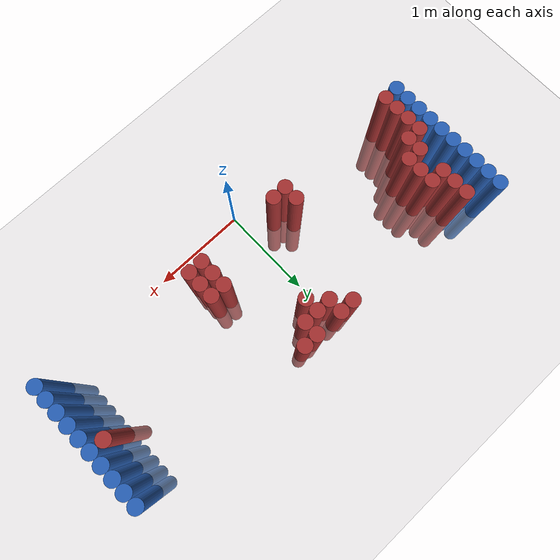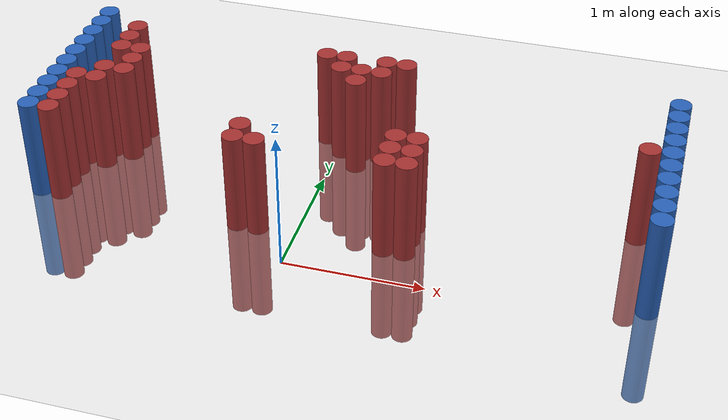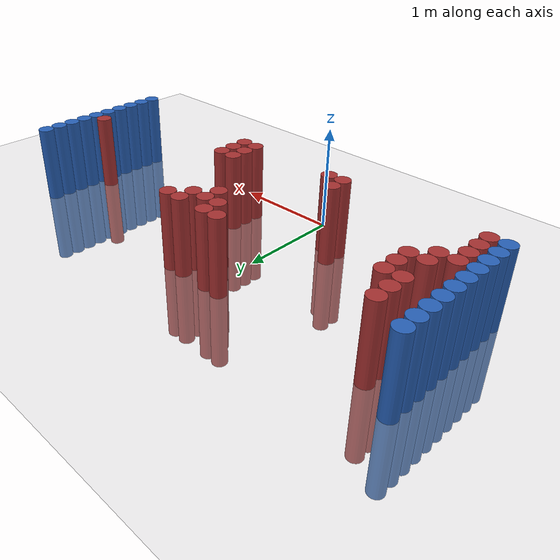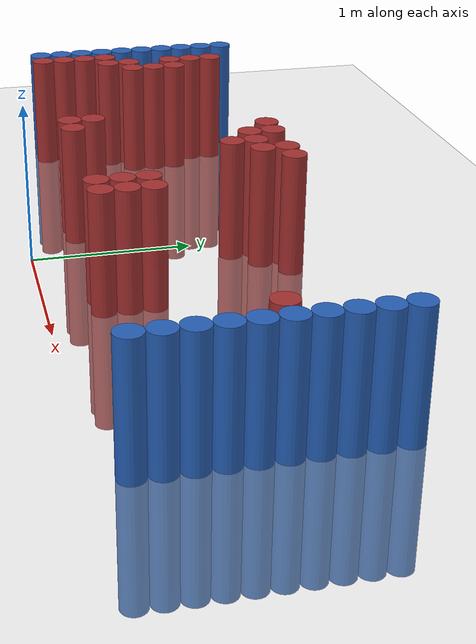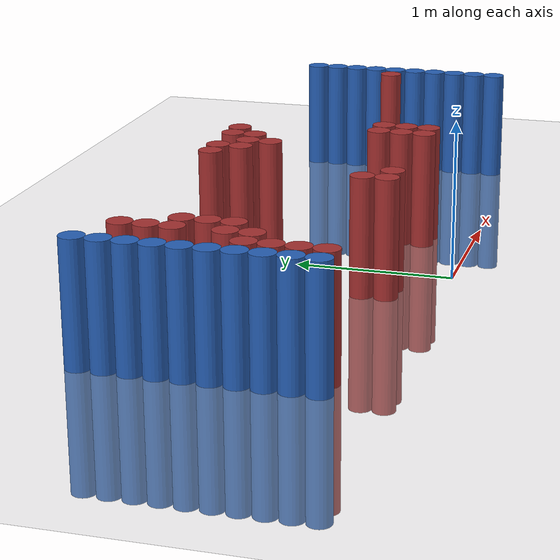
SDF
<sdf version="1.6">
 <world name="default">
  <model name="ground_plane">
   <static>1</static>
   <link name="link">
    <collision name="collision">
     <geometry><plane><normal>0 0 1</normal><size>100 100</size></plane></geometry>
     <surface><friction><ode><mu>100</mu><mu2>50</mu2></ode></friction></surface>
    </collision>
    <visual name="visual">
     <cast_shadows>0</cast_shadows>
     <geometry><plane><normal>0 0 1</normal><size>100 100</size></plane></geometry>
     <material>
      <script><uri>file://media/materials/scripts/gazebo.material</uri><name>Gazebo/Grey</name></script>
     </material>
    </visual>
   </link>
  </model>
  <model name="unit_cylinder_97">
   <static>1</static>
   <pose>-1.925000 0.325000 0.000000 0.000000 0.000000 0.000000</pose>
   <link name="link">
    <inertial>
     <mass>1</mass>
     <inertia><ixx>0.145833</ixx><ixy>0</ixy><ixz>0</ixz><iyy>0.145833</iyy><iyz>0</iyz><izz>0.125</izz></inertia>
    </inertial>
    <collision name="collision">
     <geometry><cylinder><radius>0.075000</radius><length>1.5</length></cylinder></geometry>
    </collision>
    <visual name="visual">
     <geometry><cylinder><radius>0.075000</radius><length>1.5</length></cylinder></geometry>
     <material>
      <ambient>0.152000 0.379000 0.720000 1</ambient>
      <diffuse>0.152000 0.379000 0.720000 1</diffuse>
     </material>
     <material>
      <script><name>Gazebo/Grey</name><uri>file://media/materials/scripts/gazebo.material</uri></script>
     </material>
    </visual>
   </link>
  </model>
  <model name="unit_cylinder_98">
   <static>1</static>
   <pose>-1.925000 0.475000 0.000000 0.000000 0.000000 0.000000</pose>
   <link name="link">
    <inertial>
     <mass>1</mass>
     <inertia><ixx>0.145833</ixx><ixy>0</ixy><ixz>0</ixz><iyy>0.145833</iyy><iyz>0</iyz><izz>0.125</izz></inertia>
    </inertial>
    <collision name="collision">
     <geometry><cylinder><radius>0.075000</radius><length>1.5</length></cylinder></geometry>
    </collision>
    <visual name="visual">
     <geometry><cylinder><radius>0.075000</radius><length>1.5</length></cylinder></geometry>
     <material>
      <ambient>0.152000 0.379000 0.720000 1</ambient>
      <diffuse>0.152000 0.379000 0.720000 1</diffuse>
     </material>
     <material>
      <script><name>Gazebo/Grey</name><uri>file://media/materials/scripts/gazebo.material</uri></script>
     </material>
    </visual>
   </link>
  </model>
  <model name="unit_cylinder_99">
   <static>1</static>
   <pose>-1.925000 0.625000 0.000000 0.000000 0.000000 0.000000</pose>
   <link name="link">
    <inertial>
     <mass>1</mass>
     <inertia><ixx>0.145833</ixx><ixy>0</ixy><ixz>0</ixz><iyy>0.145833</iyy><iyz>0</iyz><izz>0.125</izz></inertia>
    </inertial>
    <collision name="collision">
     <geometry><cylinder><radius>0.075000</radius><length>1.5</length></cylinder></geometry>
    </collision>
    <visual name="visual">
     <geometry><cylinder><radius>0.075000</radius><length>1.5</length></cylinder></geometry>
     <material>
      <ambient>0.152000 0.379000 0.720000 1</ambient>
      <diffuse>0.152000 0.379000 0.720000 1</diffuse>
     </material>
     <material>
      <script><name>Gazebo/Grey</name><uri>file://media/materials/scripts/gazebo.material</uri></script>
     </material>
    </visual>
   </link>
  </model>
  <model name="unit_cylinder_100">
   <static>1</static>
   <pose>-1.925000 0.775000 0.000000 0.000000 0.000000 0.000000</pose>
   <link name="link">
    <inertial>
     <mass>1</mass>
     <inertia><ixx>0.145833</ixx><ixy>0</ixy><ixz>0</ixz><iyy>0.145833</iyy><iyz>0</iyz><izz>0.125</izz></inertia>
    </inertial>
    <collision name="collision">
     <geometry><cylinder><radius>0.075000</radius><length>1.5</length></cylinder></geometry>
    </collision>
    <visual name="visual">
     <geometry><cylinder><radius>0.075000</radius><length>1.5</length></cylinder></geometry>
     <material>
      <ambient>0.152000 0.379000 0.720000 1</ambient>
      <diffuse>0.152000 0.379000 0.720000 1</diffuse>
     </material>
     <material>
      <script><name>Gazebo/Grey</name><uri>file://media/materials/scripts/gazebo.material</uri></script>
     </material>
    </visual>
   </link>
  </model>
  <model name="unit_cylinder_101">
   <static>1</static>
   <pose>-1.925000 0.925000 0.000000 0.000000 0.000000 0.000000</pose>
   <link name="link">
    <inertial>
     <mass>1</mass>
     <inertia><ixx>0.145833</ixx><ixy>0</ixy><ixz>0</ixz><iyy>0.145833</iyy><iyz>0</iyz><izz>0.125</izz></inertia>
    </inertial>
    <collision name="collision">
     <geometry><cylinder><radius>0.075000</radius><length>1.5</length></cylinder></geometry>
    </collision>
    <visual name="visual">
     <geometry><cylinder><radius>0.075000</radius><length>1.5</length></cylinder></geometry>
     <material>
      <ambient>0.152000 0.379000 0.720000 1</ambient>
      <diffuse>0.152000 0.379000 0.720000 1</diffuse>
     </material>
     <material>
      <script><name>Gazebo/Grey</name><uri>file://media/materials/scripts/gazebo.material</uri></script>
     </material>
    </visual>
   </link>
  </model>
  <model name="unit_cylinder_102">
   <static>1</static>
   <pose>-1.925000 1.075000 0.000000 0.000000 0.000000 0.000000</pose>
   <link name="link">
    <inertial>
     <mass>1</mass>
     <inertia><ixx>0.145833</ixx><ixy>0</ixy><ixz>0</ixz><iyy>0.145833</iyy><iyz>0</iyz><izz>0.125</izz></inertia>
    </inertial>
    <collision name="collision">
     <geometry><cylinder><radius>0.075000</radius><length>1.5</length></cylinder></geometry>
    </collision>
    <visual name="visual">
     <geometry><cylinder><radius>0.075000</radius><length>1.5</length></cylinder></geometry>
     <material>
      <ambient>0.152000 0.379000 0.720000 1</ambient>
      <diffuse>0.152000 0.379000 0.720000 1</diffuse>
     </material>
     <material>
      <script><name>Gazebo/Grey</name><uri>file://media/materials/scripts/gazebo.material</uri></script>
     </material>
    </visual>
   </link>
  </model>
  <model name="unit_cylinder_103">
   <static>1</static>
   <pose>-1.925000 1.225000 0.000000 0.000000 0.000000 0.000000</pose>
   <link name="link">
    <inertial>
     <mass>1</mass>
     <inertia><ixx>0.145833</ixx><ixy>0</ixy><ixz>0</ixz><iyy>0.145833</iyy><iyz>0</iyz><izz>0.125</izz></inertia>
    </inertial>
    <collision name="collision">
     <geometry><cylinder><radius>0.075000</radius><length>1.5</length></cylinder></geometry>
    </collision>
    <visual name="visual">
     <geometry><cylinder><radius>0.075000</radius><length>1.5</length></cylinder></geometry>
     <material>
      <ambient>0.152000 0.379000 0.720000 1</ambient>
      <diffuse>0.152000 0.379000 0.720000 1</diffuse>
     </material>
     <material>
      <script><name>Gazebo/Grey</name><uri>file://media/materials/scripts/gazebo.material</uri></script>
     </material>
    </visual>
   </link>
  </model>
  <model name="unit_cylinder_104">
   <static>1</static>
   <pose>-1.925000 1.375000 0.000000 0.000000 0.000000 0.000000</pose>
   <link name="link">
    <inertial>
     <mass>1</mass>
     <inertia><ixx>0.145833</ixx><ixy>0</ixy><ixz>0</ixz><iyy>0.145833</iyy><iyz>0</iyz><izz>0.125</izz></inertia>
    </inertial>
    <collision name="collision">
     <geometry><cylinder><radius>0.075000</radius><length>1.5</length></cylinder></geometry>
    </collision>
    <visual name="visual">
     <geometry><cylinder><radius>0.075000</radius><length>1.5</length></cylinder></geometry>
     <material>
      <ambient>0.152000 0.379000 0.720000 1</ambient>
      <diffuse>0.152000 0.379000 0.720000 1</diffuse>
     </material>
     <material>
      <script><name>Gazebo/Grey</name><uri>file://media/materials/scripts/gazebo.material</uri></script>
     </material>
    </visual>
   </link>
  </model>
  <model name="unit_cylinder_105">
   <static>1</static>
   <pose>-1.925000 1.525000 0.000000 0.000000 0.000000 0.000000</pose>
   <link name="link">
    <inertial>
     <mass>1</mass>
     <inertia><ixx>0.145833</ixx><ixy>0</ixy><ixz>0</ixz><iyy>0.145833</iyy><iyz>0</iyz><izz>0.125</izz></inertia>
    </inertial>
    <collision name="collision">
     <geometry><cylinder><radius>0.075000</radius><length>1.5</length></cylinder></geometry>
    </collision>
    <visual name="visual">
     <geometry><cylinder><radius>0.075000</radius><length>1.5</length></cylinder></geometry>
     <material>
      <ambient>0.152000 0.379000 0.720000 1</ambient>
      <diffuse>0.152000 0.379000 0.720000 1</diffuse>
     </material>
     <material>
      <script><name>Gazebo/Grey</name><uri>file://media/materials/scripts/gazebo.material</uri></script>
     </material>
    </visual>
   </link>
  </model>
  <model name="unit_cylinder_106">
   <static>1</static>
   <pose>-1.925000 1.675000 0.000000 0.000000 0.000000 0.000000</pose>
   <link name="link">
    <inertial>
     <mass>1</mass>
     <inertia><ixx>0.145833</ixx><ixy>0</ixy><ixz>0</ixz><iyy>0.145833</iyy><iyz>0</iyz><izz>0.125</izz></inertia>
    </inertial>
    <collision name="collision">
     <geometry><cylinder><radius>0.075000</radius><length>1.5</length></cylinder></geometry>
    </collision>
    <visual name="visual">
     <geometry><cylinder><radius>0.075000</radius><length>1.5</length></cylinder></geometry>
     <material>
      <ambient>0.152000 0.379000 0.720000 1</ambient>
      <diffuse>0.152000 0.379000 0.720000 1</diffuse>
     </material>
     <material>
      <script><name>Gazebo/Grey</name><uri>file://media/materials/scripts/gazebo.material</uri></script>
     </material>
    </visual>
   </link>
  </model>
  <model name="unit_cylinder_127">
   <static>1</static>
   <pose>-1.775000 0.325000 0.000000 0.000000 0.000000 0.000000</pose>
   <link name="link">
    <inertial>
     <mass>1</mass>
     <inertia><ixx>0.145833</ixx><ixy>0</ixy><ixz>0</ixz><iyy>0.145833</iyy><iyz>0</iyz><izz>0.125</izz></inertia>
    </inertial>
    <collision name="collision">
     <geometry><cylinder><radius>0.075000</radius><length>1.5</length></cylinder></geometry>
    </collision>
    <visual name="visual">
     <geometry><cylinder><radius>0.075000</radius><length>1.5</length></cylinder></geometry>
     <material>
      <ambient>0.648000 0.192000 0.192000 1</ambient>
      <diffuse>0.648000 0.192000 0.192000 1</diffuse>
     </material>
     <material>
      <script><name>Gazebo/Grey</name><uri>file://media/materials/scripts/gazebo.material</uri></script>
     </material>
    </visual>
   </link>
  </model>
  <model name="unit_cylinder_128">
   <static>1</static>
   <pose>-1.775000 0.475000 0.000000 0.000000 0.000000 0.000000</pose>
   <link name="link">
    <inertial>
     <mass>1</mass>
     <inertia><ixx>0.145833</ixx><ixy>0</ixy><ixz>0</ixz><iyy>0.145833</iyy><iyz>0</iyz><izz>0.125</izz></inertia>
    </inertial>
    <collision name="collision">
     <geometry><cylinder><radius>0.075000</radius><length>1.5</length></cylinder></geometry>
    </collision>
    <visual name="visual">
     <geometry><cylinder><radius>0.075000</radius><length>1.5</length></cylinder></geometry>
     <material>
      <ambient>0.648000 0.192000 0.192000 1</ambient>
      <diffuse>0.648000 0.192000 0.192000 1</diffuse>
     </material>
     <material>
      <script><name>Gazebo/Grey</name><uri>file://media/materials/scripts/gazebo.material</uri></script>
     </material>
    </visual>
   </link>
  </model>
  <model name="unit_cylinder_129">
   <static>1</static>
   <pose>-1.775000 0.625000 0.000000 0.000000 0.000000 0.000000</pose>
   <link name="link">
    <inertial>
     <mass>1</mass>
     <inertia><ixx>0.145833</ixx><ixy>0</ixy><ixz>0</ixz><iyy>0.145833</iyy><iyz>0</iyz><izz>0.125</izz></inertia>
    </inertial>
    <collision name="collision">
     <geometry><cylinder><radius>0.075000</radius><length>1.5</length></cylinder></geometry>
    </collision>
    <visual name="visual">
     <geometry><cylinder><radius>0.075000</radius><length>1.5</length></cylinder></geometry>
     <material>
      <ambient>0.648000 0.192000 0.192000 1</ambient>
      <diffuse>0.648000 0.192000 0.192000 1</diffuse>
     </material>
     <material>
      <script><name>Gazebo/Grey</name><uri>file://media/materials/scripts/gazebo.material</uri></script>
     </material>
    </visual>
   </link>
  </model>
  <model name="unit_cylinder_130">
   <static>1</static>
   <pose>-1.775000 0.775000 0.000000 0.000000 0.000000 0.000000</pose>
   <link name="link">
    <inertial>
     <mass>1</mass>
     <inertia><ixx>0.145833</ixx><ixy>0</ixy><ixz>0</ixz><iyy>0.145833</iyy><iyz>0</iyz><izz>0.125</izz></inertia>
    </inertial>
    <collision name="collision">
     <geometry><cylinder><radius>0.075000</radius><length>1.5</length></cylinder></geometry>
    </collision>
    <visual name="visual">
     <geometry><cylinder><radius>0.075000</radius><length>1.5</length></cylinder></geometry>
     <material>
      <ambient>0.648000 0.192000 0.192000 1</ambient>
      <diffuse>0.648000 0.192000 0.192000 1</diffuse>
     </material>
     <material>
      <script><name>Gazebo/Grey</name><uri>file://media/materials/scripts/gazebo.material</uri></script>
     </material>
    </visual>
   </link>
  </model>
  <model name="unit_cylinder_139">
   <static>1</static>
   <pose>-1.625000 0.775000 0.000000 0.000000 0.000000 0.000000</pose>
   <link name="link">
    <inertial>
     <mass>1</mass>
     <inertia><ixx>0.145833</ixx><ixy>0</ixy><ixz>0</ixz><iyy>0.145833</iyy><iyz>0</iyz><izz>0.125</izz></inertia>
    </inertial>
    <collision name="collision">
     <geometry><cylinder><radius>0.075000</radius><length>1.5</length></cylinder></geometry>
    </collision>
    <visual name="visual">
     <geometry><cylinder><radius>0.075000</radius><length>1.5</length></cylinder></geometry>
     <material>
      <ambient>0.648000 0.192000 0.192000 1</ambient>
      <diffuse>0.648000 0.192000 0.192000 1</diffuse>
     </material>
     <material>
      <script><name>Gazebo/Grey</name><uri>file://media/materials/scripts/gazebo.material</uri></script>
     </material>
    </visual>
   </link>
  </model>
  <model name="unit_cylinder_140">
   <static>1</static>
   <pose>-1.625000 0.925000 0.000000 0.000000 0.000000 0.000000</pose>
   <link name="link">
    <inertial>
     <mass>1</mass>
     <inertia><ixx>0.145833</ixx><ixy>0</ixy><ixz>0</ixz><iyy>0.145833</iyy><iyz>0</iyz><izz>0.125</izz></inertia>
    </inertial>
    <collision name="collision">
     <geometry><cylinder><radius>0.075000</radius><length>1.5</length></cylinder></geometry>
    </collision>
    <visual name="visual">
     <geometry><cylinder><radius>0.075000</radius><length>1.5</length></cylinder></geometry>
     <material>
      <ambient>0.648000 0.192000 0.192000 1</ambient>
      <diffuse>0.648000 0.192000 0.192000 1</diffuse>
     </material>
     <material>
      <script><name>Gazebo/Grey</name><uri>file://media/materials/scripts/gazebo.material</uri></script>
     </material>
    </visual>
   </link>
  </model>
  <model name="unit_cylinder_141">
   <static>1</static>
   <pose>-1.625000 1.225000 0.000000 0.000000 0.000000 0.000000</pose>
   <link name="link">
    <inertial>
     <mass>1</mass>
     <inertia><ixx>0.145833</ixx><ixy>0</ixy><ixz>0</ixz><iyy>0.145833</iyy><iyz>0</iyz><izz>0.125</izz></inertia>
    </inertial>
    <collision name="collision">
     <geometry><cylinder><radius>0.075000</radius><length>1.5</length></cylinder></geometry>
    </collision>
    <visual name="visual">
     <geometry><cylinder><radius>0.075000</radius><length>1.5</length></cylinder></geometry>
     <material>
      <ambient>0.648000 0.192000 0.192000 1</ambient>
      <diffuse>0.648000 0.192000 0.192000 1</diffuse>
     </material>
     <material>
      <script><name>Gazebo/Grey</name><uri>file://media/materials/scripts/gazebo.material</uri></script>
     </material>
    </visual>
   </link>
  </model>
  <model name="unit_cylinder_142">
   <static>1</static>
   <pose>-1.625000 1.375000 0.000000 0.000000 0.000000 0.000000</pose>
   <link name="link">
    <inertial>
     <mass>1</mass>
     <inertia><ixx>0.145833</ixx><ixy>0</ixy><ixz>0</ixz><iyy>0.145833</iyy><iyz>0</iyz><izz>0.125</izz></inertia>
    </inertial>
    <collision name="collision">
     <geometry><cylinder><radius>0.075000</radius><length>1.5</length></cylinder></geometry>
    </collision>
    <visual name="visual">
     <geometry><cylinder><radius>0.075000</radius><length>1.5</length></cylinder></geometry>
     <material>
      <ambient>0.648000 0.192000 0.192000 1</ambient>
      <diffuse>0.648000 0.192000 0.192000 1</diffuse>
     </material>
     <material>
      <script><name>Gazebo/Grey</name><uri>file://media/materials/scripts/gazebo.material</uri></script>
     </material>
    </visual>
   </link>
  </model>
  <model name="unit_cylinder_143">
   <static>1</static>
   <pose>-1.625000 1.525000 0.000000 0.000000 0.000000 0.000000</pose>
   <link name="link">
    <inertial>
     <mass>1</mass>
     <inertia><ixx>0.145833</ixx><ixy>0</ixy><ixz>0</ixz><iyy>0.145833</iyy><iyz>0</iyz><izz>0.125</izz></inertia>
    </inertial>
    <collision name="collision">
     <geometry><cylinder><radius>0.075000</radius><length>1.5</length></cylinder></geometry>
    </collision>
    <visual name="visual">
     <geometry><cylinder><radius>0.075000</radius><length>1.5</length></cylinder></geometry>
     <material>
      <ambient>0.648000 0.192000 0.192000 1</ambient>
      <diffuse>0.648000 0.192000 0.192000 1</diffuse>
     </material>
     <material>
      <script><name>Gazebo/Grey</name><uri>file://media/materials/scripts/gazebo.material</uri></script>
     </material>
    </visual>
   </link>
  </model>
  <model name="unit_cylinder_145">
   <static>1</static>
   <pose>-1.475000 0.925000 0.000000 0.000000 0.000000 0.000000</pose>
   <link name="link">
    <inertial>
     <mass>1</mass>
     <inertia><ixx>0.145833</ixx><ixy>0</ixy><ixz>0</ixz><iyy>0.145833</iyy><iyz>0</iyz><izz>0.125</izz></inertia>
    </inertial>
    <collision name="collision">
     <geometry><cylinder><radius>0.075000</radius><length>1.5</length></cylinder></geometry>
    </collision>
    <visual name="visual">
     <geometry><cylinder><radius>0.075000</radius><length>1.5</length></cylinder></geometry>
     <material>
      <ambient>0.648000 0.192000 0.192000 1</ambient>
      <diffuse>0.648000 0.192000 0.192000 1</diffuse>
     </material>
     <material>
      <script><name>Gazebo/Grey</name><uri>file://media/materials/scripts/gazebo.material</uri></script>
     </material>
    </visual>
   </link>
  </model>
  <model name="unit_cylinder_146">
   <static>1</static>
   <pose>-1.475000 1.075000 0.000000 0.000000 0.000000 0.000000</pose>
   <link name="link">
    <inertial>
     <mass>1</mass>
     <inertia><ixx>0.145833</ixx><ixy>0</ixy><ixz>0</ixz><iyy>0.145833</iyy><iyz>0</iyz><izz>0.125</izz></inertia>
    </inertial>
    <collision name="collision">
     <geometry><cylinder><radius>0.075000</radius><length>1.5</length></cylinder></geometry>
    </collision>
    <visual name="visual">
     <geometry><cylinder><radius>0.075000</radius><length>1.5</length></cylinder></geometry>
     <material>
      <ambient>0.648000 0.192000 0.192000 1</ambient>
      <diffuse>0.648000 0.192000 0.192000 1</diffuse>
     </material>
     <material>
      <script><name>Gazebo/Grey</name><uri>file://media/materials/scripts/gazebo.material</uri></script>
     </material>
    </visual>
   </link>
  </model>
  <model name="unit_cylinder_147">
   <static>1</static>
   <pose>-1.475000 1.225000 0.000000 0.000000 0.000000 0.000000</pose>
   <link name="link">
    <inertial>
     <mass>1</mass>
     <inertia><ixx>0.145833</ixx><ixy>0</ixy><ixz>0</ixz><iyy>0.145833</iyy><iyz>0</iyz><izz>0.125</izz></inertia>
    </inertial>
    <collision name="collision">
     <geometry><cylinder><radius>0.075000</radius><length>1.5</length></cylinder></geometry>
    </collision>
    <visual name="visual">
     <geometry><cylinder><radius>0.075000</radius><length>1.5</length></cylinder></geometry>
     <material>
      <ambient>0.648000 0.192000 0.192000 1</ambient>
      <diffuse>0.648000 0.192000 0.192000 1</diffuse>
     </material>
     <material>
      <script><name>Gazebo/Grey</name><uri>file://media/materials/scripts/gazebo.material</uri></script>
     </material>
    </visual>
   </link>
  </model>
  <model name="unit_cylinder_155">
   <static>1</static>
   <pose>-0.425000 0.325000 0.000000 0.000000 0.000000 0.000000</pose>
   <link name="link">
    <inertial>
     <mass>1</mass>
     <inertia><ixx>0.145833</ixx><ixy>0</ixy><ixz>0</ixz><iyy>0.145833</iyy><iyz>0</iyz><izz>0.125</izz></inertia>
    </inertial>
    <collision name="collision">
     <geometry><cylinder><radius>0.075000</radius><length>1.5</length></cylinder></geometry>
    </collision>
    <visual name="visual">
     <geometry><cylinder><radius>0.075000</radius><length>1.5</length></cylinder></geometry>
     <material>
      <ambient>0.648000 0.192000 0.192000 1</ambient>
      <diffuse>0.648000 0.192000 0.192000 1</diffuse>
     </material>
     <material>
      <script><name>Gazebo/Grey</name><uri>file://media/materials/scripts/gazebo.material</uri></script>
     </material>
    </visual>
   </link>
  </model>
  <model name="unit_cylinder_156">
   <static>1</static>
   <pose>-0.425000 0.475000 0.000000 0.000000 0.000000 0.000000</pose>
   <link name="link">
    <inertial>
     <mass>1</mass>
     <inertia><ixx>0.145833</ixx><ixy>0</ixy><ixz>0</ixz><iyy>0.145833</iyy><iyz>0</iyz><izz>0.125</izz></inertia>
    </inertial>
    <collision name="collision">
     <geometry><cylinder><radius>0.075000</radius><length>1.5</length></cylinder></geometry>
    </collision>
    <visual name="visual">
     <geometry><cylinder><radius>0.075000</radius><length>1.5</length></cylinder></geometry>
     <material>
      <ambient>0.648000 0.192000 0.192000 1</ambient>
      <diffuse>0.648000 0.192000 0.192000 1</diffuse>
     </material>
     <material>
      <script><name>Gazebo/Grey</name><uri>file://media/materials/scripts/gazebo.material</uri></script>
     </material>
    </visual>
   </link>
  </model>
  <model name="unit_cylinder_157">
   <static>1</static>
   <pose>-0.275000 0.325000 0.000000 0.000000 0.000000 0.000000</pose>
   <link name="link">
    <inertial>
     <mass>1</mass>
     <inertia><ixx>0.145833</ixx><ixy>0</ixy><ixz>0</ixz><iyy>0.145833</iyy><iyz>0</iyz><izz>0.125</izz></inertia>
    </inertial>
    <collision name="collision">
     <geometry><cylinder><radius>0.075000</radius><length>1.5</length></cylinder></geometry>
    </collision>
    <visual name="visual">
     <geometry><cylinder><radius>0.075000</radius><length>1.5</length></cylinder></geometry>
     <material>
      <ambient>0.648000 0.192000 0.192000 1</ambient>
      <diffuse>0.648000 0.192000 0.192000 1</diffuse>
     </material>
     <material>
      <script><name>Gazebo/Grey</name><uri>file://media/materials/scripts/gazebo.material</uri></script>
     </material>
    </visual>
   </link>
  </model>
  <model name="unit_cylinder_158">
   <static>1</static>
   <pose>-0.125000 1.525000 0.000000 0.000000 0.000000 0.000000</pose>
   <link name="link">
    <inertial>
     <mass>1</mass>
     <inertia><ixx>0.145833</ixx><ixy>0</ixy><ixz>0</ixz><iyy>0.145833</iyy><iyz>0</iyz><izz>0.125</izz></inertia>
    </inertial>
    <collision name="collision">
     <geometry><cylinder><radius>0.075000</radius><length>1.5</length></cylinder></geometry>
    </collision>
    <visual name="visual">
     <geometry><cylinder><radius>0.075000</radius><length>1.5</length></cylinder></geometry>
     <material>
      <ambient>0.648000 0.192000 0.192000 1</ambient>
      <diffuse>0.648000 0.192000 0.192000 1</diffuse>
     </material>
     <material>
      <script><name>Gazebo/Grey</name><uri>file://media/materials/scripts/gazebo.material</uri></script>
     </material>
    </visual>
   </link>
  </model>
  <model name="unit_cylinder_159">
   <static>1</static>
   <pose>0.025000 1.375000 0.000000 0.000000 0.000000 0.000000</pose>
   <link name="link">
    <inertial>
     <mass>1</mass>
     <inertia><ixx>0.145833</ixx><ixy>0</ixy><ixz>0</ixz><iyy>0.145833</iyy><iyz>0</iyz><izz>0.125</izz></inertia>
    </inertial>
    <collision name="collision">
     <geometry><cylinder><radius>0.075000</radius><length>1.5</length></cylinder></geometry>
    </collision>
    <visual name="visual">
     <geometry><cylinder><radius>0.075000</radius><length>1.5</length></cylinder></geometry>
     <material>
      <ambient>0.648000 0.192000 0.192000 1</ambient>
      <diffuse>0.648000 0.192000 0.192000 1</diffuse>
     </material>
     <material>
      <script><name>Gazebo/Grey</name><uri>file://media/materials/scripts/gazebo.material</uri></script>
     </material>
    </visual>
   </link>
  </model>
  <model name="unit_cylinder_160">
   <static>1</static>
   <pose>0.025000 1.525000 0.000000 0.000000 0.000000 0.000000</pose>
   <link name="link">
    <inertial>
     <mass>1</mass>
     <inertia><ixx>0.145833</ixx><ixy>0</ixy><ixz>0</ixz><iyy>0.145833</iyy><iyz>0</iyz><izz>0.125</izz></inertia>
    </inertial>
    <collision name="collision">
     <geometry><cylinder><radius>0.075000</radius><length>1.5</length></cylinder></geometry>
    </collision>
    <visual name="visual">
     <geometry><cylinder><radius>0.075000</radius><length>1.5</length></cylinder></geometry>
     <material>
      <ambient>0.648000 0.192000 0.192000 1</ambient>
      <diffuse>0.648000 0.192000 0.192000 1</diffuse>
     </material>
     <material>
      <script><name>Gazebo/Grey</name><uri>file://media/materials/scripts/gazebo.material</uri></script>
     </material>
    </visual>
   </link>
  </model>
  <model name="unit_cylinder_162">
   <static>1</static>
   <pose>0.175000 1.225000 0.000000 0.000000 0.000000 0.000000</pose>
   <link name="link">
    <inertial>
     <mass>1</mass>
     <inertia><ixx>0.145833</ixx><ixy>0</ixy><ixz>0</ixz><iyy>0.145833</iyy><iyz>0</iyz><izz>0.125</izz></inertia>
    </inertial>
    <collision name="collision">
     <geometry><cylinder><radius>0.075000</radius><length>1.5</length></cylinder></geometry>
    </collision>
    <visual name="visual">
     <geometry><cylinder><radius>0.075000</radius><length>1.5</length></cylinder></geometry>
     <material>
      <ambient>0.648000 0.192000 0.192000 1</ambient>
      <diffuse>0.648000 0.192000 0.192000 1</diffuse>
     </material>
     <material>
      <script><name>Gazebo/Grey</name><uri>file://media/materials/scripts/gazebo.material</uri></script>
     </material>
    </visual>
   </link>
  </model>
  <model name="unit_cylinder_163">
   <static>1</static>
   <pose>0.175000 1.375000 0.000000 0.000000 0.000000 0.000000</pose>
   <link name="link">
    <inertial>
     <mass>1</mass>
     <inertia><ixx>0.145833</ixx><ixy>0</ixy><ixz>0</ixz><iyy>0.145833</iyy><iyz>0</iyz><izz>0.125</izz></inertia>
    </inertial>
    <collision name="collision">
     <geometry><cylinder><radius>0.075000</radius><length>1.5</length></cylinder></geometry>
    </collision>
    <visual name="visual">
     <geometry><cylinder><radius>0.075000</radius><length>1.5</length></cylinder></geometry>
     <material>
      <ambient>0.648000 0.192000 0.192000 1</ambient>
      <diffuse>0.648000 0.192000 0.192000 1</diffuse>
     </material>
     <material>
      <script><name>Gazebo/Grey</name><uri>file://media/materials/scripts/gazebo.material</uri></script>
     </material>
    </visual>
   </link>
  </model>
  <model name="unit_cylinder_168">
   <static>1</static>
   <pose>0.325000 1.375000 0.000000 0.000000 0.000000 0.000000</pose>
   <link name="link">
    <inertial>
     <mass>1</mass>
     <inertia><ixx>0.145833</ixx><ixy>0</ixy><ixz>0</ixz><iyy>0.145833</iyy><iyz>0</iyz><izz>0.125</izz></inertia>
    </inertial>
    <collision name="collision">
     <geometry><cylinder><radius>0.075000</radius><length>1.5</length></cylinder></geometry>
    </collision>
    <visual name="visual">
     <geometry><cylinder><radius>0.075000</radius><length>1.5</length></cylinder></geometry>
     <material>
      <ambient>0.648000 0.192000 0.192000 1</ambient>
      <diffuse>0.648000 0.192000 0.192000 1</diffuse>
     </material>
     <material>
      <script><name>Gazebo/Grey</name><uri>file://media/materials/scripts/gazebo.material</uri></script>
     </material>
    </visual>
   </link>
  </model>
  <model name="unit_cylinder_169">
   <static>1</static>
   <pose>0.325000 1.525000 0.000000 0.000000 0.000000 0.000000</pose>
   <link name="link">
    <inertial>
     <mass>1</mass>
     <inertia><ixx>0.145833</ixx><ixy>0</ixy><ixz>0</ixz><iyy>0.145833</iyy><iyz>0</iyz><izz>0.125</izz></inertia>
    </inertial>
    <collision name="collision">
     <geometry><cylinder><radius>0.075000</radius><length>1.5</length></cylinder></geometry>
    </collision>
    <visual name="visual">
     <geometry><cylinder><radius>0.075000</radius><length>1.5</length></cylinder></geometry>
     <material>
      <ambient>0.648000 0.192000 0.192000 1</ambient>
      <diffuse>0.648000 0.192000 0.192000 1</diffuse>
     </material>
     <material>
      <script><name>Gazebo/Grey</name><uri>file://media/materials/scripts/gazebo.material</uri></script>
     </material>
    </visual>
   </link>
  </model>
  <model name="unit_cylinder_175">
   <static>1</static>
   <pose>0.475000 1.525000 0.000000 0.000000 0.000000 0.000000</pose>
   <link name="link">
    <inertial>
     <mass>1</mass>
     <inertia><ixx>0.145833</ixx><ixy>0</ixy><ixz>0</ixz><iyy>0.145833</iyy><iyz>0</iyz><izz>0.125</izz></inertia>
    </inertial>
    <collision name="collision">
     <geometry><cylinder><radius>0.075000</radius><length>1.5</length></cylinder></geometry>
    </collision>
    <visual name="visual">
     <geometry><cylinder><radius>0.075000</radius><length>1.5</length></cylinder></geometry>
     <material>
      <ambient>0.648000 0.192000 0.192000 1</ambient>
      <diffuse>0.648000 0.192000 0.192000 1</diffuse>
     </material>
     <material>
      <script><name>Gazebo/Grey</name><uri>file://media/materials/scripts/gazebo.material</uri></script>
     </material>
    </visual>
   </link>
  </model>
  <model name="unit_cylinder_177">
   <static>1</static>
   <pose>0.625000 0.325000 0.000000 0.000000 0.000000 0.000000</pose>
   <link name="link">
    <inertial>
     <mass>1</mass>
     <inertia><ixx>0.145833</ixx><ixy>0</ixy><ixz>0</ixz><iyy>0.145833</iyy><iyz>0</iyz><izz>0.125</izz></inertia>
    </inertial>
    <collision name="collision">
     <geometry><cylinder><radius>0.075000</radius><length>1.5</length></cylinder></geometry>
    </collision>
    <visual name="visual">
     <geometry><cylinder><radius>0.075000</radius><length>1.5</length></cylinder></geometry>
     <material>
      <ambient>0.648000 0.192000 0.192000 1</ambient>
      <diffuse>0.648000 0.192000 0.192000 1</diffuse>
     </material>
     <material>
      <script><name>Gazebo/Grey</name><uri>file://media/materials/scripts/gazebo.material</uri></script>
     </material>
    </visual>
   </link>
  </model>
  <model name="unit_cylinder_178">
   <static>1</static>
   <pose>0.625000 0.475000 0.000000 0.000000 0.000000 0.000000</pose>
   <link name="link">
    <inertial>
     <mass>1</mass>
     <inertia><ixx>0.145833</ixx><ixy>0</ixy><ixz>0</ixz><iyy>0.145833</iyy><iyz>0</iyz><izz>0.125</izz></inertia>
    </inertial>
    <collision name="collision">
     <geometry><cylinder><radius>0.075000</radius><length>1.5</length></cylinder></geometry>
    </collision>
    <visual name="visual">
     <geometry><cylinder><radius>0.075000</radius><length>1.5</length></cylinder></geometry>
     <material>
      <ambient>0.648000 0.192000 0.192000 1</ambient>
      <diffuse>0.648000 0.192000 0.192000 1</diffuse>
     </material>
     <material>
      <script><name>Gazebo/Grey</name><uri>file://media/materials/scripts/gazebo.material</uri></script>
     </material>
    </visual>
   </link>
  </model>
  <model name="unit_cylinder_179">
   <static>1</static>
   <pose>0.625000 0.625000 0.000000 0.000000 0.000000 0.000000</pose>
   <link name="link">
    <inertial>
     <mass>1</mass>
     <inertia><ixx>0.145833</ixx><ixy>0</ixy><ixz>0</ixz><iyy>0.145833</iyy><iyz>0</iyz><izz>0.125</izz></inertia>
    </inertial>
    <collision name="collision">
     <geometry><cylinder><radius>0.075000</radius><length>1.5</length></cylinder></geometry>
    </collision>
    <visual name="visual">
     <geometry><cylinder><radius>0.075000</radius><length>1.5</length></cylinder></geometry>
     <material>
      <ambient>0.648000 0.192000 0.192000 1</ambient>
      <diffuse>0.648000 0.192000 0.192000 1</diffuse>
     </material>
     <material>
      <script><name>Gazebo/Grey</name><uri>file://media/materials/scripts/gazebo.material</uri></script>
     </material>
    </visual>
   </link>
  </model>
  <model name="unit_cylinder_180">
   <static>1</static>
   <pose>0.775000 0.325000 0.000000 0.000000 0.000000 0.000000</pose>
   <link name="link">
    <inertial>
     <mass>1</mass>
     <inertia><ixx>0.145833</ixx><ixy>0</ixy><ixz>0</ixz><iyy>0.145833</iyy><iyz>0</iyz><izz>0.125</izz></inertia>
    </inertial>
    <collision name="collision">
     <geometry><cylinder><radius>0.075000</radius><length>1.5</length></cylinder></geometry>
    </collision>
    <visual name="visual">
     <geometry><cylinder><radius>0.075000</radius><length>1.5</length></cylinder></geometry>
     <material>
      <ambient>0.648000 0.192000 0.192000 1</ambient>
      <diffuse>0.648000 0.192000 0.192000 1</diffuse>
     </material>
     <material>
      <script><name>Gazebo/Grey</name><uri>file://media/materials/scripts/gazebo.material</uri></script>
     </material>
    </visual>
   </link>
  </model>
  <model name="unit_cylinder_181">
   <static>1</static>
   <pose>0.775000 0.475000 0.000000 0.000000 0.000000 0.000000</pose>
   <link name="link">
    <inertial>
     <mass>1</mass>
     <inertia><ixx>0.145833</ixx><ixy>0</ixy><ixz>0</ixz><iyy>0.145833</iyy><iyz>0</iyz><izz>0.125</izz></inertia>
    </inertial>
    <collision name="collision">
     <geometry><cylinder><radius>0.075000</radius><length>1.5</length></cylinder></geometry>
    </collision>
    <visual name="visual">
     <geometry><cylinder><radius>0.075000</radius><length>1.5</length></cylinder></geometry>
     <material>
      <ambient>0.648000 0.192000 0.192000 1</ambient>
      <diffuse>0.648000 0.192000 0.192000 1</diffuse>
     </material>
     <material>
      <script><name>Gazebo/Grey</name><uri>file://media/materials/scripts/gazebo.material</uri></script>
     </material>
    </visual>
   </link>
  </model>
  <model name="unit_cylinder_182">
   <static>1</static>
   <pose>0.775000 0.625000 0.000000 0.000000 0.000000 0.000000</pose>
   <link name="link">
    <inertial>
     <mass>1</mass>
     <inertia><ixx>0.145833</ixx><ixy>0</ixy><ixz>0</ixz><iyy>0.145833</iyy><iyz>0</iyz><izz>0.125</izz></inertia>
    </inertial>
    <collision name="collision">
     <geometry><cylinder><radius>0.075000</radius><length>1.5</length></cylinder></geometry>
    </collision>
    <visual name="visual">
     <geometry><cylinder><radius>0.075000</radius><length>1.5</length></cylinder></geometry>
     <material>
      <ambient>0.648000 0.192000 0.192000 1</ambient>
      <diffuse>0.648000 0.192000 0.192000 1</diffuse>
     </material>
     <material>
      <script><name>Gazebo/Grey</name><uri>file://media/materials/scripts/gazebo.material</uri></script>
     </material>
    </visual>
   </link>
  </model>
  <model name="unit_cylinder_210">
   <static>1</static>
   <pose>2.275000 0.925000 0.000000 0.000000 0.000000 0.000000</pose>
   <link name="link">
    <inertial>
     <mass>1</mass>
     <inertia><ixx>0.145833</ixx><ixy>0</ixy><ixz>0</ixz><iyy>0.145833</iyy><iyz>0</iyz><izz>0.125</izz></inertia>
    </inertial>
    <collision name="collision">
     <geometry><cylinder><radius>0.075000</radius><length>1.5</length></cylinder></geometry>
    </collision>
    <visual name="visual">
     <geometry><cylinder><radius>0.075000</radius><length>1.5</length></cylinder></geometry>
     <material>
      <ambient>0.648000 0.192000 0.192000 1</ambient>
      <diffuse>0.648000 0.192000 0.192000 1</diffuse>
     </material>
     <material>
      <script><name>Gazebo/Grey</name><uri>file://media/materials/scripts/gazebo.material</uri></script>
     </material>
    </visual>
   </link>
  </model>
  <model name="unit_cylinder_221">
   <static>1</static>
   <pose>2.425000 0.175000 0.000000 0.000000 0.000000 0.000000</pose>
   <link name="link">
    <inertial>
     <mass>1</mass>
     <inertia><ixx>0.145833</ixx><ixy>0</ixy><ixz>0</ixz><iyy>0.145833</iyy><iyz>0</iyz><izz>0.125</izz></inertia>
    </inertial>
    <collision name="collision">
     <geometry><cylinder><radius>0.075000</radius><length>1.5</length></cylinder></geometry>
    </collision>
    <visual name="visual">
     <geometry><cylinder><radius>0.075000</radius><length>1.5</length></cylinder></geometry>
     <material>
      <ambient>0.152000 0.379000 0.720000 1</ambient>
      <diffuse>0.152000 0.379000 0.720000 1</diffuse>
     </material>
     <material>
      <script><name>Gazebo/Grey</name><uri>file://media/materials/scripts/gazebo.material</uri></script>
     </material>
    </visual>
   </link>
  </model>
  <model name="unit_cylinder_222">
   <static>1</static>
   <pose>2.425000 0.325000 0.000000 0.000000 0.000000 0.000000</pose>
   <link name="link">
    <inertial>
     <mass>1</mass>
     <inertia><ixx>0.145833</ixx><ixy>0</ixy><ixz>0</ixz><iyy>0.145833</iyy><iyz>0</iyz><izz>0.125</izz></inertia>
    </inertial>
    <collision name="collision">
     <geometry><cylinder><radius>0.075000</radius><length>1.5</length></cylinder></geometry>
    </collision>
    <visual name="visual">
     <geometry><cylinder><radius>0.075000</radius><length>1.5</length></cylinder></geometry>
     <material>
      <ambient>0.152000 0.379000 0.720000 1</ambient>
      <diffuse>0.152000 0.379000 0.720000 1</diffuse>
     </material>
     <material>
      <script><name>Gazebo/Grey</name><uri>file://media/materials/scripts/gazebo.material</uri></script>
     </material>
    </visual>
   </link>
  </model>
  <model name="unit_cylinder_223">
   <static>1</static>
   <pose>2.425000 0.475000 0.000000 0.000000 0.000000 0.000000</pose>
   <link name="link">
    <inertial>
     <mass>1</mass>
     <inertia><ixx>0.145833</ixx><ixy>0</ixy><ixz>0</ixz><iyy>0.145833</iyy><iyz>0</iyz><izz>0.125</izz></inertia>
    </inertial>
    <collision name="collision">
     <geometry><cylinder><radius>0.075000</radius><length>1.5</length></cylinder></geometry>
    </collision>
    <visual name="visual">
     <geometry><cylinder><radius>0.075000</radius><length>1.5</length></cylinder></geometry>
     <material>
      <ambient>0.152000 0.379000 0.720000 1</ambient>
      <diffuse>0.152000 0.379000 0.720000 1</diffuse>
     </material>
     <material>
      <script><name>Gazebo/Grey</name><uri>file://media/materials/scripts/gazebo.material</uri></script>
     </material>
    </visual>
   </link>
  </model>
  <model name="unit_cylinder_224">
   <static>1</static>
   <pose>2.425000 0.625000 0.000000 0.000000 0.000000 0.000000</pose>
   <link name="link">
    <inertial>
     <mass>1</mass>
     <inertia><ixx>0.145833</ixx><ixy>0</ixy><ixz>0</ixz><iyy>0.145833</iyy><iyz>0</iyz><izz>0.125</izz></inertia>
    </inertial>
    <collision name="collision">
     <geometry><cylinder><radius>0.075000</radius><length>1.5</length></cylinder></geometry>
    </collision>
    <visual name="visual">
     <geometry><cylinder><radius>0.075000</radius><length>1.5</length></cylinder></geometry>
     <material>
      <ambient>0.152000 0.379000 0.720000 1</ambient>
      <diffuse>0.152000 0.379000 0.720000 1</diffuse>
     </material>
     <material>
      <script><name>Gazebo/Grey</name><uri>file://media/materials/scripts/gazebo.material</uri></script>
     </material>
    </visual>
   </link>
  </model>
  <model name="unit_cylinder_225">
   <static>1</static>
   <pose>2.425000 0.775000 0.000000 0.000000 0.000000 0.000000</pose>
   <link name="link">
    <inertial>
     <mass>1</mass>
     <inertia><ixx>0.145833</ixx><ixy>0</ixy><ixz>0</ixz><iyy>0.145833</iyy><iyz>0</iyz><izz>0.125</izz></inertia>
    </inertial>
    <collision name="collision">
     <geometry><cylinder><radius>0.075000</radius><length>1.5</length></cylinder></geometry>
    </collision>
    <visual name="visual">
     <geometry><cylinder><radius>0.075000</radius><length>1.5</length></cylinder></geometry>
     <material>
      <ambient>0.152000 0.379000 0.720000 1</ambient>
      <diffuse>0.152000 0.379000 0.720000 1</diffuse>
     </material>
     <material>
      <script><name>Gazebo/Grey</name><uri>file://media/materials/scripts/gazebo.material</uri></script>
     </material>
    </visual>
   </link>
  </model>
  <model name="unit_cylinder_226">
   <static>1</static>
   <pose>2.425000 0.925000 0.000000 0.000000 0.000000 0.000000</pose>
   <link name="link">
    <inertial>
     <mass>1</mass>
     <inertia><ixx>0.145833</ixx><ixy>0</ixy><ixz>0</ixz><iyy>0.145833</iyy><iyz>0</iyz><izz>0.125</izz></inertia>
    </inertial>
    <collision name="collision">
     <geometry><cylinder><radius>0.075000</radius><length>1.5</length></cylinder></geometry>
    </collision>
    <visual name="visual">
     <geometry><cylinder><radius>0.075000</radius><length>1.5</length></cylinder></geometry>
     <material>
      <ambient>0.152000 0.379000 0.720000 1</ambient>
      <diffuse>0.152000 0.379000 0.720000 1</diffuse>
     </material>
     <material>
      <script><name>Gazebo/Grey</name><uri>file://media/materials/scripts/gazebo.material</uri></script>
     </material>
    </visual>
   </link>
  </model>
  <model name="unit_cylinder_227">
   <static>1</static>
   <pose>2.425000 1.075000 0.000000 0.000000 0.000000 0.000000</pose>
   <link name="link">
    <inertial>
     <mass>1</mass>
     <inertia><ixx>0.145833</ixx><ixy>0</ixy><ixz>0</ixz><iyy>0.145833</iyy><iyz>0</iyz><izz>0.125</izz></inertia>
    </inertial>
    <collision name="collision">
     <geometry><cylinder><radius>0.075000</radius><length>1.5</length></cylinder></geometry>
    </collision>
    <visual name="visual">
     <geometry><cylinder><radius>0.075000</radius><length>1.5</length></cylinder></geometry>
     <material>
      <ambient>0.152000 0.379000 0.720000 1</ambient>
      <diffuse>0.152000 0.379000 0.720000 1</diffuse>
     </material>
     <material>
      <script><name>Gazebo/Grey</name><uri>file://media/materials/scripts/gazebo.material</uri></script>
     </material>
    </visual>
   </link>
  </model>
  <model name="unit_cylinder_228">
   <static>1</static>
   <pose>2.425000 1.225000 0.000000 0.000000 0.000000 0.000000</pose>
   <link name="link">
    <inertial>
     <mass>1</mass>
     <inertia><ixx>0.145833</ixx><ixy>0</ixy><ixz>0</ixz><iyy>0.145833</iyy><iyz>0</iyz><izz>0.125</izz></inertia>
    </inertial>
    <collision name="collision">
     <geometry><cylinder><radius>0.075000</radius><length>1.5</length></cylinder></geometry>
    </collision>
    <visual name="visual">
     <geometry><cylinder><radius>0.075000</radius><length>1.5</length></cylinder></geometry>
     <material>
      <ambient>0.152000 0.379000 0.720000 1</ambient>
      <diffuse>0.152000 0.379000 0.720000 1</diffuse>
     </material>
     <material>
      <script><name>Gazebo/Grey</name><uri>file://media/materials/scripts/gazebo.material</uri></script>
     </material>
    </visual>
   </link>
  </model>
  <model name="unit_cylinder_229">
   <static>1</static>
   <pose>2.425000 1.375000 0.000000 0.000000 0.000000 0.000000</pose>
   <link name="link">
    <inertial>
     <mass>1</mass>
     <inertia><ixx>0.145833</ixx><ixy>0</ixy><ixz>0</ixz><iyy>0.145833</iyy><iyz>0</iyz><izz>0.125</izz></inertia>
    </inertial>
    <collision name="collision">
     <geometry><cylinder><radius>0.075000</radius><length>1.5</length></cylinder></geometry>
    </collision>
    <visual name="visual">
     <geometry><cylinder><radius>0.075000</radius><length>1.5</length></cylinder></geometry>
     <material>
      <ambient>0.152000 0.379000 0.720000 1</ambient>
      <diffuse>0.152000 0.379000 0.720000 1</diffuse>
     </material>
     <material>
      <script><name>Gazebo/Grey</name><uri>file://media/materials/scripts/gazebo.material</uri></script>
     </material>
    </visual>
   </link>
  </model>
  <model name="unit_cylinder_230">
   <static>1</static>
   <pose>2.425000 1.525000 0.000000 0.000000 0.000000 0.000000</pose>
   <link name="link">
    <inertial>
     <mass>1</mass>
     <inertia><ixx>0.145833</ixx><ixy>0</ixy><ixz>0</ixz><iyy>0.145833</iyy><iyz>0</iyz><izz>0.125</izz></inertia>
    </inertial>
    <collision name="collision">
     <geometry><cylinder><radius>0.075000</radius><length>1.5</length></cylinder></geometry>
    </collision>
    <visual name="visual">
     <geometry><cylinder><radius>0.075000</radius><length>1.5</length></cylinder></geometry>
     <material>
      <ambient>0.152000 0.379000 0.720000 1</ambient>
      <diffuse>0.152000 0.379000 0.720000 1</diffuse>
     </material>
     <material>
      <script><name>Gazebo/Grey</name><uri>file://media/materials/scripts/gazebo.material</uri></script>
     </material>
    </visual>
   </link>
  </model>
 </world>
</sdf>
